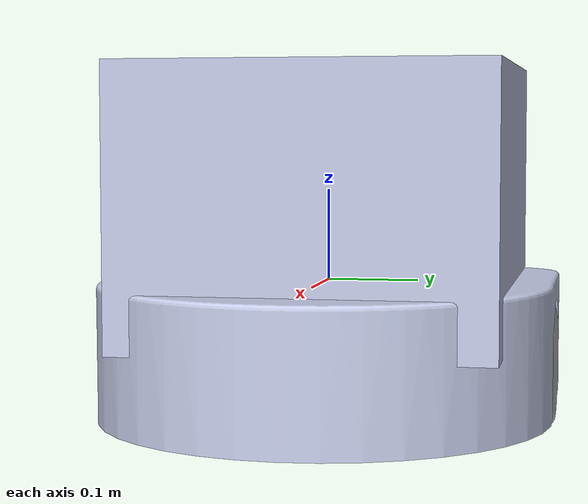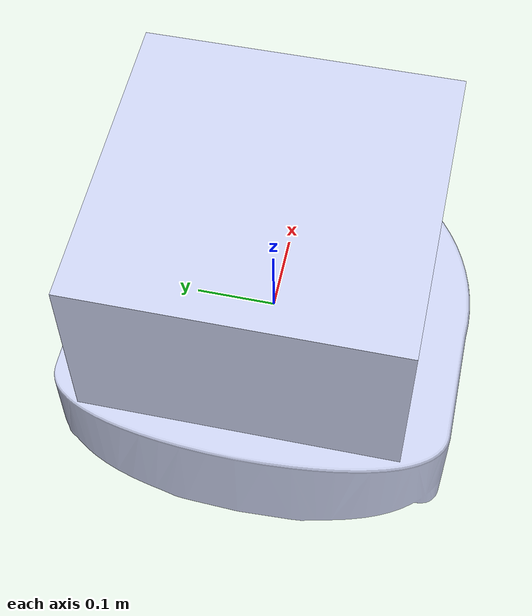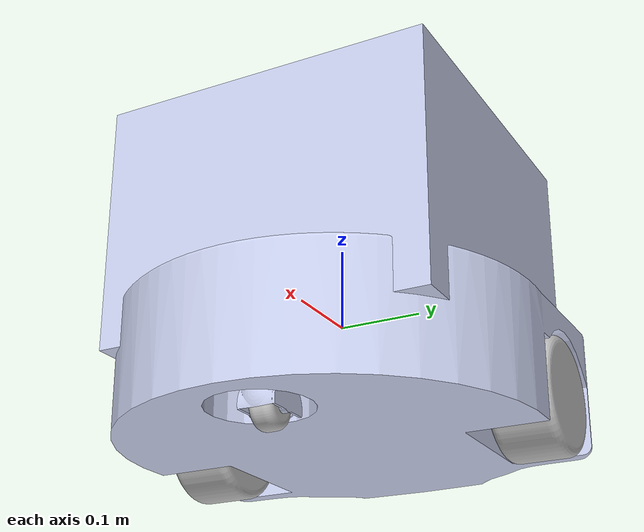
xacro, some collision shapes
<?xml version="1.0" encoding="utf-8"?>
<robot name="ASS_Robot" xmlns:xacro="http://www.ros.org/wiki/xacro">
<xacro:include filename="$(find mobile_robot)/model/ass_robot_description/urdf/robot.gazebo"/>
  <link
    name="base_link">
    <inertial>
      <origin
        xyz="0.0150421058918037 7.87415460802576E-06 -0.0694802702894512"
        rpy="0 0 0" />
      <mass
        value="28.8218329453164" />
      <inertia
        ixx="0.487581987962772"
        ixy="2.6462409224555E-05"
        ixz="0.00273098857312145"
        iyy="0.550268443099047"
        iyz="1.05480606357733E-06"
        izz="0.924041089909813" />
    </inertial>
    <visual>
      <origin
        xyz="0 0 0"
        rpy="0 0 0" />
      <geometry>
        <mesh
          filename="package://ass_robot_description/meshes/base_link.STL" />
      </geometry>
      <material
        name="">
        <color
          rgba="0.792156862745098 0.819607843137255 0.933333333333333 1" />
      </material>
    </visual>
    <collision>
      <origin xyz="0.05 0 -0.07" rpy="0 0 0" />
      <geometry>
        <box size="0.40 0.45 0.15"/>
      </geometry>
    </collision>
  </link>
  <link
    name="Left_wheel">
    <inertial>
      <origin
        xyz="0 0 -0.0387"
        rpy="0 0 0" />
      <mass
        value="1.17320543741845" />
      <inertia
        ixx="0.00198800277932776"
        ixy="0"
        ixz="0"
        iyy="0.00198800277932776"
        iyz="0"
        izz="0.00283501232765337" />
    </inertial>
    <visual>
      <origin
        xyz="0 0 0"
        rpy="0 -0.22305 0" />
      <geometry>
        <mesh
          filename="package://ass_robot_description/meshes/Left_wheel.STL" />
      </geometry>
      <material
        name="">
        <color
          rgba="0.752941176470588 0.752941176470588 0.752941176470588 1" />
      </material>
    </visual>
    <collision>
      <origin
        xyz="0 0 0"
        rpy="0 0 0" />
      <geometry>
        <cylinder radius="0.0695" length="0.05"/>
      </geometry>
    </collision>
  </link>
  <joint
    name="left_wheel_joint"
    type="continuous">
    <origin
      xyz="-0.073544 0.24905 -0.1"
      rpy="-1.5708 0 0" />
    <parent
      link="base_link" />
    <child
      link="Left_wheel" />
    <axis
      xyz="0 0 1" />
    <dynamics
      damping="0.1"
      friction="0.1" />
  </joint>
  <link
    name="Right_wheel">
    <inertial>
      <origin
        xyz="5.55111512312578E-17 0 0.0387"
        rpy="0 0 0" />
      <mass
        value="1.17320543741845" />
      <inertia
        ixx="0.00198800277932776"
        ixy="4.06575814682064E-19"
        ixz="2.98155597433514E-19"
        iyy="0.00198800277932776"
        iyz="-2.71050543121376E-19"
        izz="0.00283501232765337" />
    </inertial>
    <visual>
      <origin
        xyz="0 0 0"
        rpy="0 0 0" />
      <geometry>
        <mesh
          filename="package://ass_robot_description/meshes/Right_wheel.STL" />
      </geometry>
      <material
        name="">
        <color
          rgba="0.752941176470588 0.752941176470588 0.752941176470588 1" />
      </material>
    </visual>
    <collision>
      <origin
        xyz="0 0 0"
        rpy="0 0 0" />
      <geometry>
        <cylinder radius="0.0695" length="0.05"/>
      </geometry>
    </collision>
  </link>
  <joint
    name="right_wheel_joint"
    type="continuous">
    <origin
      xyz="-0.073544 -0.24905 -0.1"
      rpy="-1.5708 0 0" />
    <parent
      link="base_link" />
    <child
      link="Right_wheel" />
    <axis
      xyz="0 0 1" />
    <dynamics
      damping="0.1"
      friction="0.1" />
  </joint>
  <link
    name="Castor">
    <inertial>
      <origin
        xyz="-0.018216784333907 6.12481405370957E-07 -0.0496394726797626"
        rpy="0 0 0" />
      <mass
        value="0.0502982220794987" />
      <inertia
        ixx="2.10211254580428E-05"
        ixy="-7.4788853076431E-10"
        ixz="-3.69383064162082E-06"
        iyy="2.72371977958679E-05"
        iyz="-1.54428723768098E-09"
        izz="2.27374613649264E-05" />
    </inertial>
    <visual>
      <origin
        xyz="0 0 0"
        rpy="0 0 0" />
      <geometry>
        <mesh
          filename="package://ass_robot_description/meshes/Castor.STL" />
      </geometry>
      <material
        name="">
        <color
          rgba="0.792156862745098 0.819607843137255 0.933333333333333 1" />
      </material>
    </visual>
    <collision>
      <origin xyz="-0.018 0 -0.025" rpy="0 0 0" />
      <geometry>
        <box size="0.06 0.04 0.05"/>
      </geometry>
    </collision>
  </link>
  <joint
    name="Castor_joint"
    type="continuous">
    <origin
      xyz="0.18479 0 -0.0752"
      rpy="0 0 0" />
    <parent
      link="base_link" />
    <child
      link="Castor" />
    <axis
      xyz="0 0 1" />
  </joint>
  <link
    name="Castor_Wheel">
    <inertial>
      <origin
        xyz="0 0 0"
        rpy="0 0 0" />
      <mass
        value="0.0467334599376183" />
      <inertia
        ixx="1.04416967249263E-05"
        ixy="3.17637355220363E-22"
        ixz="1.05879118406788E-21"
        iyy="1.04416967249263E-05"
        iyz="1.27054942088145E-21"
        izz="1.49696419566983E-05" />
    </inertial>
    <visual>
      <origin
        xyz="0 0 0"
        rpy="0 0 0" />
      <geometry>
        <mesh
          filename="package://ass_robot_description/meshes/Castor_Wheel.STL" />
      </geometry>
      <material
        name="">
        <color
          rgba="0.752941176470588 0.752941176470588 0.752941176470588 1" />
      </material>
    </visual>
    <collision>
      <origin xyz="0 0 0" rpy="0 0 0" />
      <geometry>
        <sphere radius="0.025"/>
      </geometry>
    </collision>
  </link>
  <joint
    name="Castor_WheelLink"
    type="continuous">
    <origin
      xyz="-0.02 0 -0.0698"
      rpy="-1.5708 0 0" />
    <parent
      link="Castor" />
    <child
      link="Castor_Wheel" />
    <axis
      xyz="0 0 -1" />
    <dynamics
      damping="0.1"
      friction="0.1" />
  </joint>
  <link
    name="Upper_Swivel">
    <inertial>
      <origin
        xyz="-0.0134627540582945 0.00596515391221672 -0.35"
        rpy="0 0 0" />
      <mass
        value="27.6853568389625" />
      <inertia
        ixx="0.497938899929684"
        ixy="-0.0322428511237002"
        ixz="-0.00513742129672784"
        iyy="0.439455532873779"
        iyz="0.00227654026623388"
        izz="0.820571076943156" />
    </inertial>
    <visual>
      <origin
        xyz="0 0 0"
        rpy="0 0 0" />
      <geometry>
        <mesh
          filename="package://ass_robot_description/meshes/Upper_Swivel.STL" />
      </geometry>
      <material
        name="">
        <color
          rgba="0.792156862745098 0.819607843137255 0.933333333333333 1" />
      </material>
    </visual>
    <collision>
      <origin xyz="-0.013 0.006 0.077" rpy="0 0 0" />
      <geometry>
        <box size="0.40 0.40 0.30"/>
      </geometry>
    </collision>
  </link>
  <joint
    name="Upper_swivel"
    type="continuous">
    <origin
      xyz="0.0232320933885067 0 0.0100000000000001"
      rpy="0 0 0" />
    <parent
      link="base_link" />
    <child
      link="Upper_Swivel" />
    <axis
      xyz="0 0 1" />
    <dynamics
      damping="5.0"
      friction="2.0" />
  </joint>

  <link name="lidar_link">
    <inertial>
      <mass value="0.1"/>
      <inertia ixx="1e-5" ixy="0" ixz="0" iyy="1e-5" iyz="0" izz="1e-5"/>
    </inertial>
    <visual>
      <geometry>
        <cylinder radius="0.05" length="0.04"/>
      </geometry>
      <material name="">
        <color rgba="0.2 0.2 0.2 1"/>
      </material>
    </visual>
    <collision>
      <geometry>
        <cylinder radius="0.05" length="0.04"/>
      </geometry>
    </collision>
  </link>

  <ros2_control name="GazeboSystem" type="system">
    <hardware>
      <plugin>gz_ros2_control/GazeboSimSystem</plugin>
    </hardware>
    <joint name="Upper_swivel">
      <command_interface name="velocity"/>
      <state_interface name="position"/>
      <state_interface name="velocity"/>
    </joint>
  </ros2_control>

  <joint name="lidar_joint" type="fixed">
    <parent link="Upper_Swivel"/>
    <child link="lidar_link"/>
    <origin xyz="0 0 0.17" rpy="0 0 0"/>
  </joint>

</robot>
